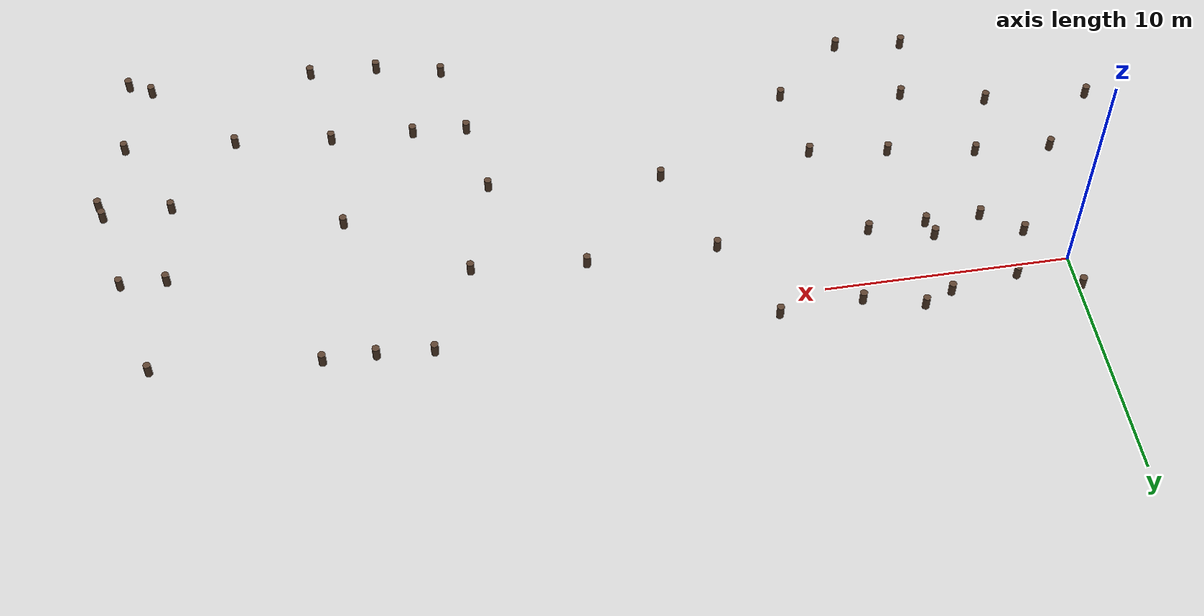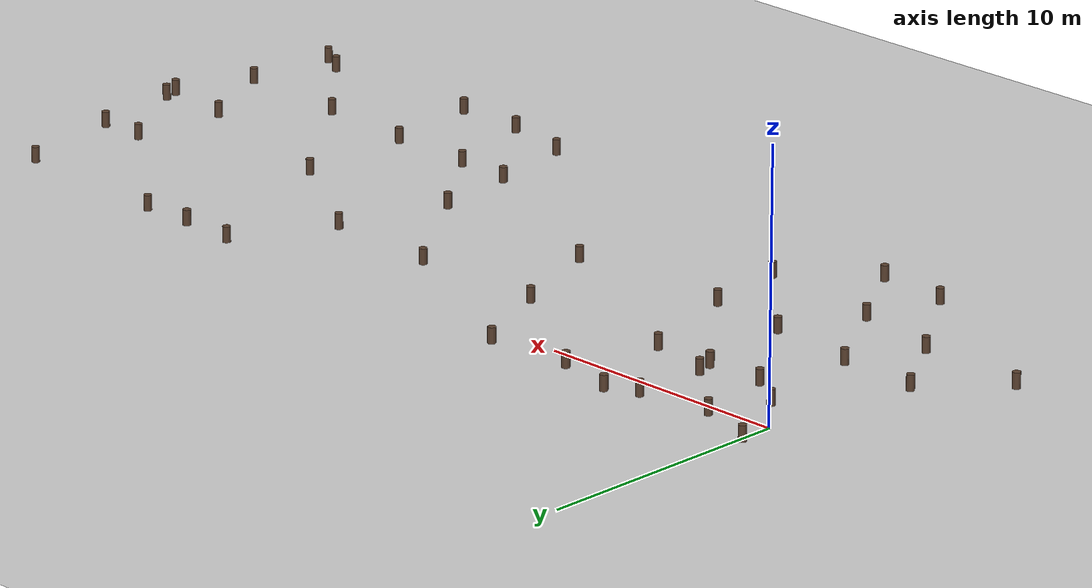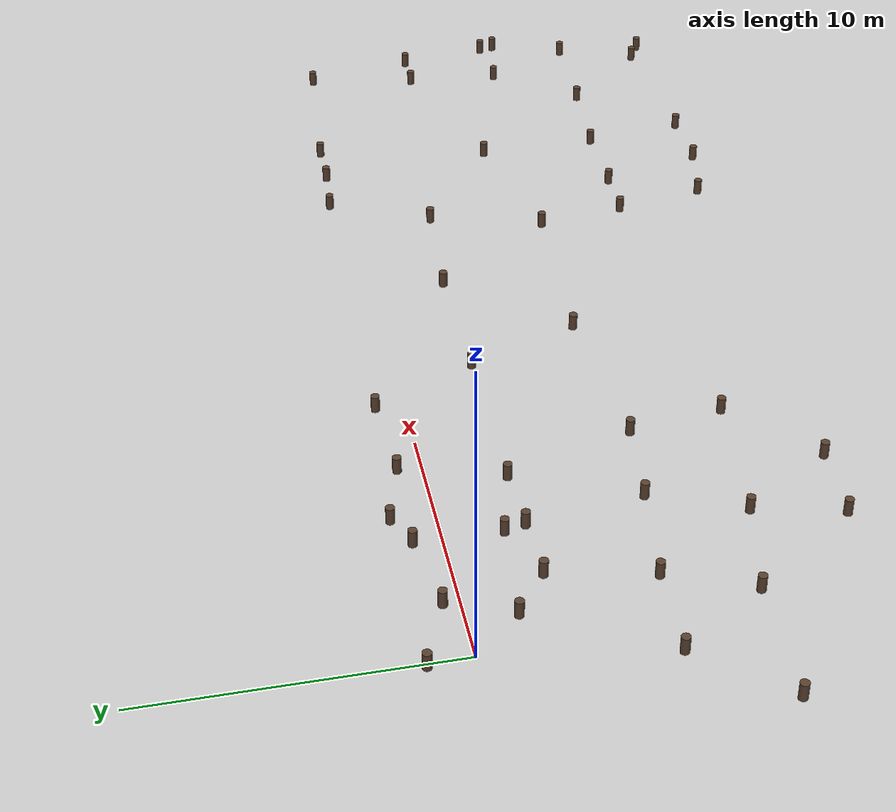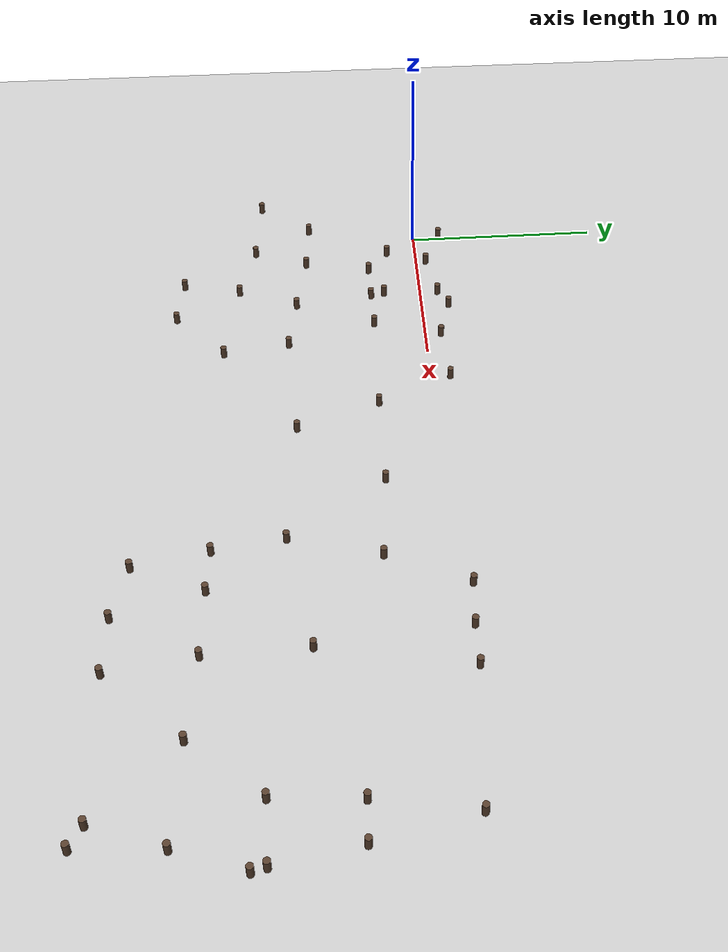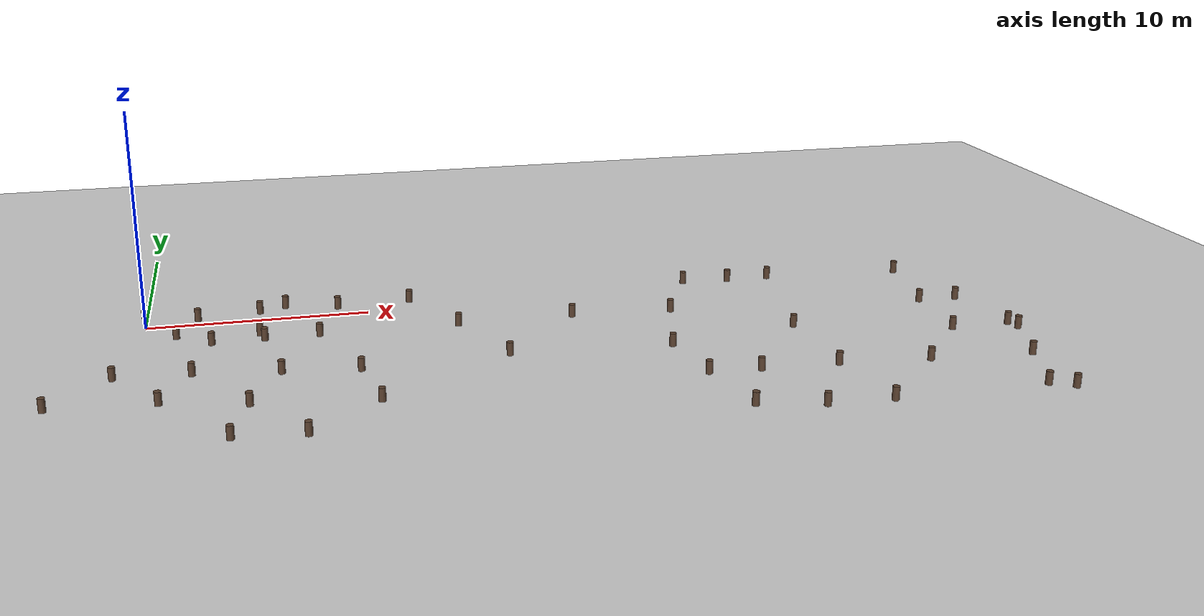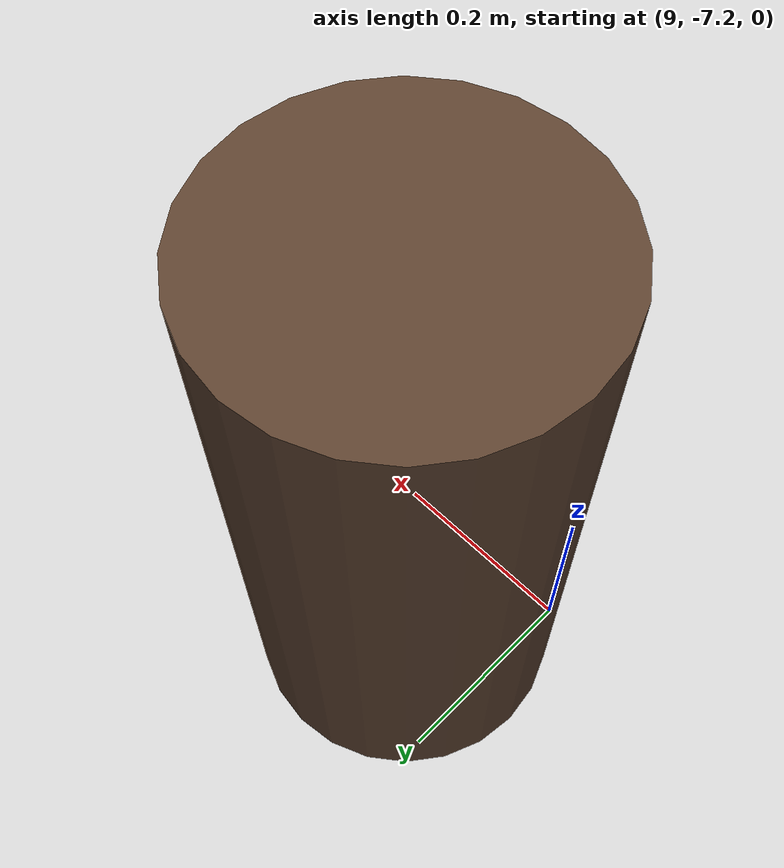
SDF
<?xml version="1.0"?>
<sdf version="1.6">
  <world name="orchard_world">
    <include>
      <uri>model://sun</uri>
    </include>

    <include>
      <uri>model://ground_plane</uri>
    </include>

    <!-- Trees: 46 includes of model://tree_trunk -->
    <include>
      <uri>model://tree_trunk</uri>
      <name>tree_0000</name>
      <pose>37.219902 -15.308496 0 0 0 0</pose>
    </include>
    <include>
      <uri>model://tree_trunk</uri>
      <name>tree_0001</name>
      <pose>29.460762 -14.848864 0 0 0 0</pose>
    </include>
    <include>
      <uri>model://tree_trunk</uri>
      <name>tree_0002</name>
      <pose>36.266296 -14.798975 0 0 0 0</pose>
    </include>
    <include>
      <uri>model://tree_trunk</uri>
      <name>tree_0003</name>
      <pose>26.624523 -14.742422 0 0 0 0</pose>
    </include>
    <include>
      <uri>model://tree_trunk</uri>
      <name>tree_0004</name>
      <pose>23.874138 -14.086459 0 0 0 0</pose>
    </include>
    <include>
      <uri>model://tree_trunk</uri>
      <name>tree_0005</name>
      <pose>6.638331 -12.941549 0 0 0 0</pose>
    </include>
    <include>
      <uri>model://tree_trunk</uri>
      <name>tree_0006</name>
      <pose>3.782352 -12.650820 0 0 0 0</pose>
    </include>
    <include>
      <uri>model://tree_trunk</uri>
      <name>tree_0007</name>
      <pose>37.454666 -11.682571 0 0 0 0</pose>
    </include>
    <include>
      <uri>model://tree_trunk</uri>
      <name>tree_0008</name>
      <pose>32.858498 -11.331612 0 0 0 0</pose>
    </include>
    <include>
      <uri>model://tree_trunk</uri>
      <name>tree_0009</name>
      <pose>28.840132 -10.903311 0 0 0 0</pose>
    </include>
    <include>
      <uri>model://tree_trunk</uri>
      <name>tree_0010</name>
      <pose>25.411903 -10.767055 0 0 0 0</pose>
    </include>
    <include>
      <uri>model://tree_trunk</uri>
      <name>tree_0011</name>
      <pose>23.156864 -10.623858 0 0 0 0</pose>
    </include>
    <include>
      <uri>model://tree_trunk</uri>
      <name>tree_0012</name>
      <pose>9.627531 -10.404451 0 0 0 0</pose>
    </include>
    <include>
      <uri>model://tree_trunk</uri>
      <name>tree_0013</name>
      <pose>4.513428 -9.688703 0 0 0 0</pose>
    </include>
    <include>
      <uri>model://tree_trunk</uri>
      <name>tree_0014</name>
      <pose>1.006804 -8.846239 0 0 0 0</pose>
    </include>
    <include>
      <uri>model://tree_trunk</uri>
      <name>tree_0015</name>
      <pose>38.556816 -8.702170 0 0 0 0</pose>
    </include>
    <include>
      <uri>model://tree_trunk</uri>
      <name>tree_0016</name>
      <pose>-3.353376 -8.535335 0 0 0 0</pose>
    </include>
    <include>
      <uri>model://tree_trunk</uri>
      <name>tree_0017</name>
      <pose>35.600525 -8.152077 0 0 0 0</pose>
    </include>
    <include>
      <uri>model://tree_trunk</uri>
      <name>tree_0018</name>
      <pose>38.391872 -8.099730 0 0 0 0</pose>
    </include>
    <include>
      <uri>model://tree_trunk</uri>
      <name>tree_0019</name>
      <pose>22.633177 -7.301185 0 0 0 0</pose>
    </include>
    <include>
      <uri>model://tree_trunk</uri>
      <name>tree_0020</name>
      <pose>9.100792 -7.082886 0 0 0 0</pose>
    </include>
    <include>
      <uri>model://tree_trunk</uri>
      <name>tree_0021</name>
      <pose>15.483120 -6.752225 0 0 0 0</pose>
    </include>
    <include>
      <uri>model://tree_trunk</uri>
      <name>tree_0022</name>
      <pose>5.843584 -6.643099 0 0 0 0</pose>
    </include>
    <include>
      <uri>model://tree_trunk</uri>
      <name>tree_0023</name>
      <pose>28.694939 -6.250850 0 0 0 0</pose>
    </include>
    <include>
      <uri>model://tree_trunk</uri>
      <name>tree_0024</name>
      <pose>2.202819 -6.069530 0 0 0 0</pose>
    </include>
    <include>
      <uri>model://tree_trunk</uri>
      <name>tree_0025</name>
      <pose>-0.976841 -5.867651 0 0 0 0</pose>
    </include>
    <include>
      <uri>model://tree_trunk</uri>
      <name>tree_0026</name>
      <pose>37.737026 -4.457987 0 0 0 0</pose>
    </include>
    <include>
      <uri>model://tree_trunk</uri>
      <name>tree_0027</name>
      <pose>35.892895 -4.397911 0 0 0 0</pose>
    </include>
    <include>
      <uri>model://tree_trunk</uri>
      <name>tree_0028</name>
      <pose>23.853498 -3.074679 0 0 0 0</pose>
    </include>
    <include>
      <uri>model://tree_trunk</uri>
      <name>tree_0029</name>
      <pose>13.874519 -2.708086 0 0 0 0</pose>
    </include>
    <include>
      <uri>model://tree_trunk</uri>
      <name>tree_0030</name>
      <pose>19.198460 -2.706586 0 0 0 0</pose>
    </include>
    <include>
      <uri>model://tree_trunk</uri>
      <name>tree_0031</name>
      <pose>2.949650 -2.665696 0 0 0 0</pose>
    </include>
    <include>
      <uri>model://tree_trunk</uri>
      <name>tree_0032</name>
      <pose>5.240348 -2.645377 0 0 0 0</pose>
    </include>
    <include>
      <uri>model://tree_trunk</uri>
      <name>tree_0033</name>
      <pose>7.638859 -2.606055 0 0 0 0</pose>
    </include>
    <include>
      <uri>model://tree_trunk</uri>
      <name>tree_0034</name>
      <pose>5.043342 -1.934631 0 0 0 0</pose>
    </include>
    <include>
      <uri>model://tree_trunk</uri>
      <name>tree_0035</name>
      <pose>1.405865 -1.573769 0 0 0 0</pose>
    </include>
    <include>
      <uri>model://tree_trunk</uri>
      <name>tree_0036</name>
      <pose>36.694599 -0.081761 0 0 0 0</pose>
    </include>
    <include>
      <uri>model://tree_trunk</uri>
      <name>tree_0037</name>
      <pose>30.034782 0.467498 0 0 0 0</pose>
    </include>
    <include>
      <uri>model://tree_trunk</uri>
      <name>tree_0038</name>
      <pose>27.943953 0.496001 0 0 0 0</pose>
    </include>
    <include>
      <uri>model://tree_trunk</uri>
      <name>tree_0039</name>
      <pose>2.291663 0.530652 0 0 0 0</pose>
    </include>
    <include>
      <uri>model://tree_trunk</uri>
      <name>tree_0040</name>
      <pose>25.684065 0.666963 0 0 0 0</pose>
    </include>
    <include>
      <uri>model://tree_trunk</uri>
      <name>tree_0041</name>
      <pose>8.678985 0.815908 0 0 0 0</pose>
    </include>
    <include>
      <uri>model://tree_trunk</uri>
      <name>tree_0042</name>
      <pose>5.090144 0.933911 0 0 0 0</pose>
    </include>
    <include>
      <uri>model://tree_trunk</uri>
      <name>tree_0043</name>
      <pose>12.066479 0.981791 0 0 0 0</pose>
    </include>
    <include>
      <uri>model://tree_trunk</uri>
      <name>tree_0044</name>
      <pose>6.277730 1.430573 0 0 0 0</pose>
    </include>
    <include>
      <uri>model://tree_trunk</uri>
      <name>tree_0045</name>
      <pose>-0.119587 1.433015 0 0 0 0</pose>
    </include>
  </world>
</sdf>

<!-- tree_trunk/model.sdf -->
<sdf version="1.6">
  <model name="tree_trunk">
    <static>true</static>
    <link name="link">
      <collision name="trunk_collision">
        <pose>0 0 0.30 0 0 0</pose>
        <geometry>
          <cylinder>
            <radius>0.15</radius>
            <length>0.60</length>
          </cylinder>
        </geometry>
      </collision>
      <visual name="trunk_visual">
        <pose>0 0 0.30 0 0 0</pose>
        <geometry>
          <cylinder>
            <radius>0.15</radius>
            <length>0.60</length>
          </cylinder>
        </geometry>
        <material>
          <ambient>0.25 0.18 0.12 1</ambient>
          <diffuse>0.35 0.25 0.18 1</diffuse>
        </material>
      </visual>
    </link>
  </model>
</sdf>
